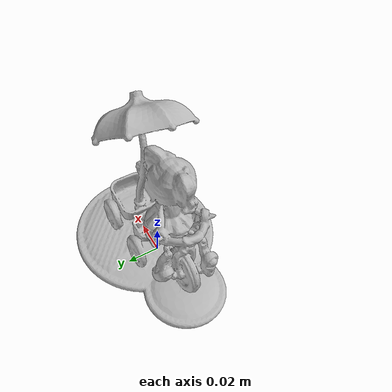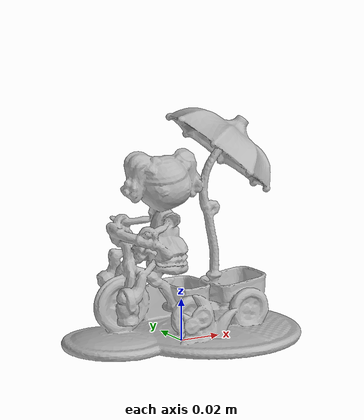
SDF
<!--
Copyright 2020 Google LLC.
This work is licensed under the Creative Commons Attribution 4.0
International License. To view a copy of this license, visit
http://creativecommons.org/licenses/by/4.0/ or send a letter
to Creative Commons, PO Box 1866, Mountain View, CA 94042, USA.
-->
<?xml version="1.0" ?>
<sdf version="1.6">
  <model name="Lalaloopsy_Peanut_Big_Top_Tricycle">
    <link name="link_0">
      <visual name="visual">
        <geometry>
          <mesh>
            <uri>meshes/model.obj</uri>
          </mesh>
        </geometry>
      </visual>
      <collision name="collision_0">
        <geometry>
          <mesh>
            <uri>meshes/model.obj</uri>
          </mesh>
        </geometry>
      </collision>
    </link>
  </model>
</sdf>
